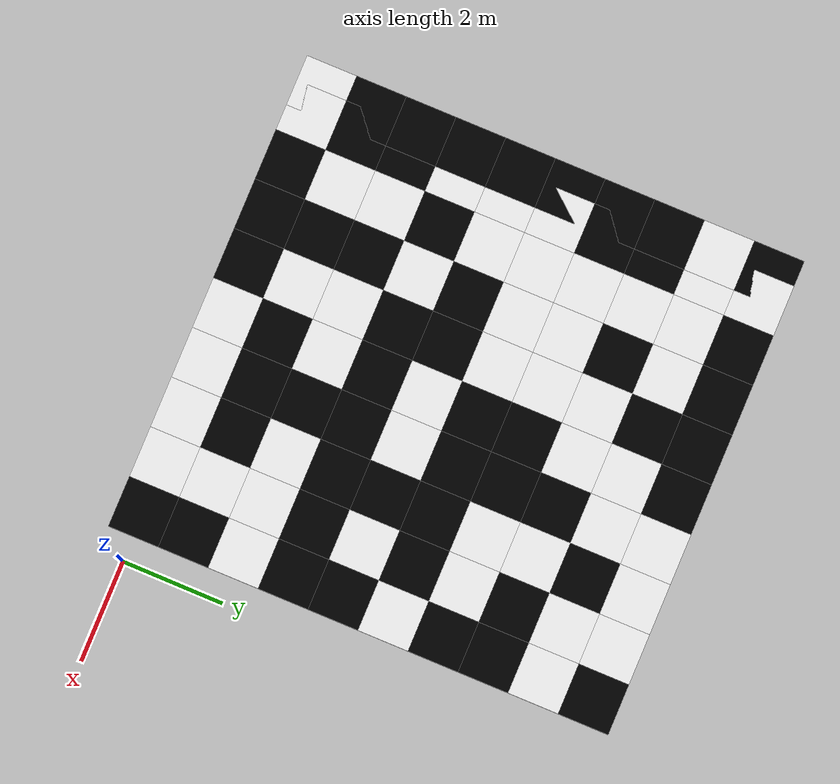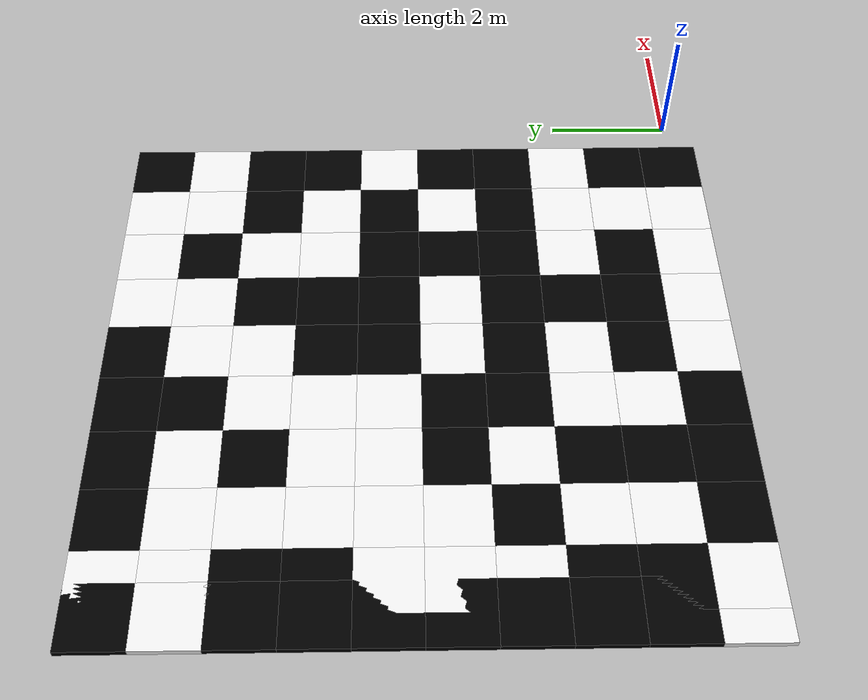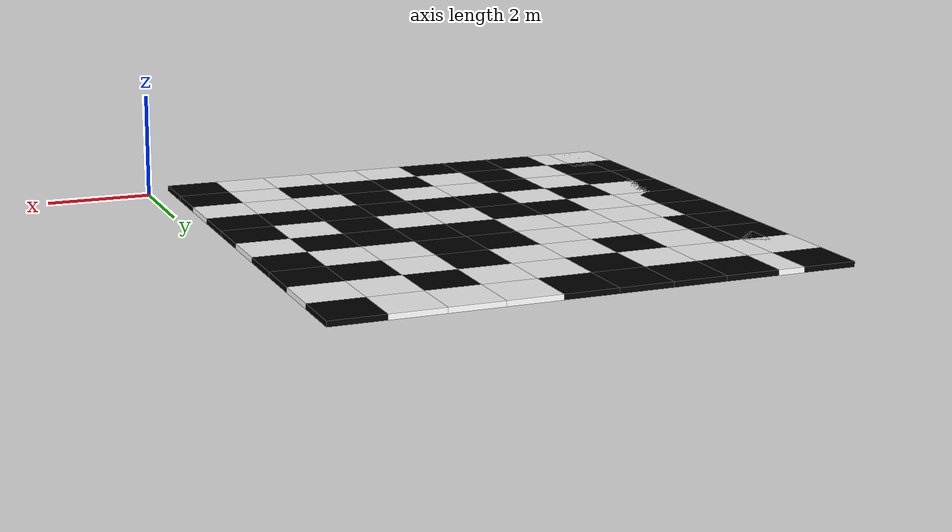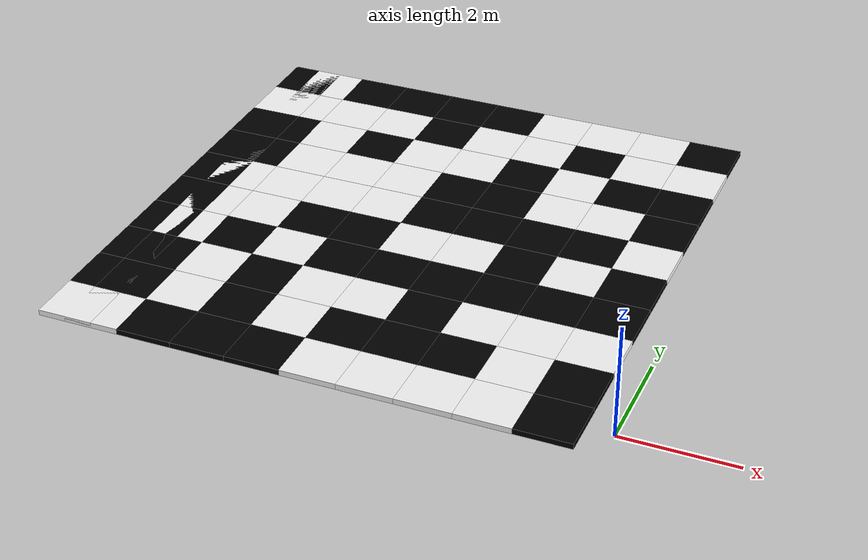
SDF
<sdf version="1.8">
 <world name="collective_perception_task_world">
  <model name="tile_-10_0">
   <is_static>true</is_static>
   <pose>-9.5 0 0 0 0 0</pose>
   <link name="link">
    <collision name="collision"><geometry><box><size>1 1 0.1</size></box></geometry></collision>
    <visual name="visual">
     <geometry><box><size>1 1 0.1</size></box></geometry>
     <material><ambient>1 1 1 1</ambient><diffuse>1 1 1 1</diffuse></material>
    </visual>
   </link>
  </model>
  <model name="tile_-10_1">
   <is_static>true</is_static>
   <pose>-9.5 1 0 0 0 0</pose>
   <link name="link">
    <collision name="collision"><geometry><box><size>1 1 0.1</size></box></geometry></collision>
    <visual name="visual">
     <geometry><box><size>1 1 0.1</size></box></geometry>
     <material><ambient>0 0 0 1</ambient><diffuse>0 0 0 1</diffuse></material>
    </visual>
   </link>
  </model>
  <model name="tile_-10_2">
   <is_static>true</is_static>
   <pose>-9.5 2 0 0 0 0</pose>
   <link name="link">
    <collision name="collision"><geometry><box><size>1 1 0.1</size></box></geometry></collision>
    <visual name="visual">
     <geometry><box><size>1 1 0.1</size></box></geometry>
     <material><ambient>0 0 0 1</ambient><diffuse>0 0 0 1</diffuse></material>
    </visual>
   </link>
  </model>
  <model name="tile_-10_3">
   <is_static>true</is_static>
   <pose>-9.5 3 0 0 0 0</pose>
   <link name="link">
    <collision name="collision"><geometry><box><size>1 1 0.1</size></box></geometry></collision>
    <visual name="visual">
     <geometry><box><size>1 1 0.1</size></box></geometry>
     <material><ambient>0 0 0 1</ambient><diffuse>0 0 0 1</diffuse></material>
    </visual>
   </link>
  </model>
  <model name="tile_-10_4">
   <is_static>true</is_static>
   <pose>-9.5 4 0 0 0 0</pose>
   <link name="link">
    <collision name="collision"><geometry><box><size>1 1 0.1</size></box></geometry></collision>
    <visual name="visual">
     <geometry><box><size>1 1 0.1</size></box></geometry>
     <material><ambient>0 0 0 1</ambient><diffuse>0 0 0 1</diffuse></material>
    </visual>
   </link>
  </model>
  <model name="tile_-10_5">
   <is_static>true</is_static>
   <pose>-9.5 5 0 0 0 0</pose>
   <link name="link">
    <collision name="collision"><geometry><box><size>1 1 0.1</size></box></geometry></collision>
    <visual name="visual">
     <geometry><box><size>1 1 0.1</size></box></geometry>
     <material><ambient>0 0 0 1</ambient><diffuse>0 0 0 1</diffuse></material>
    </visual>
   </link>
  </model>
  <model name="tile_-10_6">
   <is_static>true</is_static>
   <pose>-9.5 6 0 0 0 0</pose>
   <link name="link">
    <collision name="collision"><geometry><box><size>1 1 0.1</size></box></geometry></collision>
    <visual name="visual">
     <geometry><box><size>1 1 0.1</size></box></geometry>
     <material><ambient>0 0 0 1</ambient><diffuse>0 0 0 1</diffuse></material>
    </visual>
   </link>
  </model>
  <model name="tile_-10_7">
   <is_static>true</is_static>
   <pose>-9.5 7 0 0 0 0</pose>
   <link name="link">
    <collision name="collision"><geometry><box><size>1 1 0.1</size></box></geometry></collision>
    <visual name="visual">
     <geometry><box><size>1 1 0.1</size></box></geometry>
     <material><ambient>0 0 0 1</ambient><diffuse>0 0 0 1</diffuse></material>
    </visual>
   </link>
  </model>
  <model name="tile_-10_8">
   <is_static>true</is_static>
   <pose>-9.5 8 0 0 0 0</pose>
   <link name="link">
    <collision name="collision"><geometry><box><size>1 1 0.1</size></box></geometry></collision>
    <visual name="visual">
     <geometry><box><size>1 1 0.1</size></box></geometry>
     <material><ambient>1 1 1 1</ambient><diffuse>1 1 1 1</diffuse></material>
    </visual>
   </link>
  </model>
  <model name="tile_-10_9">
   <is_static>true</is_static>
   <pose>-9.5 9 0 0 0 0</pose>
   <link name="link">
    <collision name="collision"><geometry><box><size>1 1 0.1</size></box></geometry></collision>
    <visual name="visual">
     <geometry><box><size>1 1 0.1</size></box></geometry>
     <material><ambient>0 0 0 1</ambient><diffuse>0 0 0 1</diffuse></material>
    </visual>
   </link>
  </model>
  <model name="tile_-9_0">
   <is_static>true</is_static>
   <pose>-9 0 0 0 0 0</pose>
   <link name="link">
    <collision name="collision"><geometry><box><size>1 1 0.1</size></box></geometry></collision>
    <visual name="visual">
     <geometry><box><size>1 1 0.1</size></box></geometry>
     <material><ambient>1 1 1 1</ambient><diffuse>1 1 1 1</diffuse></material>
    </visual>
   </link>
  </model>
  <model name="tile_-9_1">
   <is_static>true</is_static>
   <pose>-9 1 0 0 0 0</pose>
   <link name="link">
    <collision name="collision"><geometry><box><size>1 1 0.1</size></box></geometry></collision>
    <visual name="visual">
     <geometry><box><size>1 1 0.1</size></box></geometry>
     <material><ambient>0 0 0 1</ambient><diffuse>0 0 0 1</diffuse></material>
    </visual>
   </link>
  </model>
  <model name="tile_-9_2">
   <is_static>true</is_static>
   <pose>-9 2 0 0 0 0</pose>
   <link name="link">
    <collision name="collision"><geometry><box><size>1 1 0.1</size></box></geometry></collision>
    <visual name="visual">
     <geometry><box><size>1 1 0.1</size></box></geometry>
     <material><ambient>0 0 0 1</ambient><diffuse>0 0 0 1</diffuse></material>
    </visual>
   </link>
  </model>
  <model name="tile_-9_3">
   <is_static>true</is_static>
   <pose>-9 3 0 0 0 0</pose>
   <link name="link">
    <collision name="collision"><geometry><box><size>1 1 0.1</size></box></geometry></collision>
    <visual name="visual">
     <geometry><box><size>1 1 0.1</size></box></geometry>
     <material><ambient>1 1 1 1</ambient><diffuse>1 1 1 1</diffuse></material>
    </visual>
   </link>
  </model>
  <model name="tile_-9_4">
   <is_static>true</is_static>
   <pose>-9 4 0 0 0 0</pose>
   <link name="link">
    <collision name="collision"><geometry><box><size>1 1 0.1</size></box></geometry></collision>
    <visual name="visual">
     <geometry><box><size>1 1 0.1</size></box></geometry>
     <material><ambient>1 1 1 1</ambient><diffuse>1 1 1 1</diffuse></material>
    </visual>
   </link>
  </model>
  <model name="tile_-9_5">
   <is_static>true</is_static>
   <pose>-9 5 0 0 0 0</pose>
   <link name="link">
    <collision name="collision"><geometry><box><size>1 1 0.1</size></box></geometry></collision>
    <visual name="visual">
     <geometry><box><size>1 1 0.1</size></box></geometry>
     <material><ambient>1 1 1 1</ambient><diffuse>1 1 1 1</diffuse></material>
    </visual>
   </link>
  </model>
  <model name="tile_-9_6">
   <is_static>true</is_static>
   <pose>-9 6 0 0 0 0</pose>
   <link name="link">
    <collision name="collision"><geometry><box><size>1 1 0.1</size></box></geometry></collision>
    <visual name="visual">
     <geometry><box><size>1 1 0.1</size></box></geometry>
     <material><ambient>0 0 0 1</ambient><diffuse>0 0 0 1</diffuse></material>
    </visual>
   </link>
  </model>
  <model name="tile_-9_7">
   <is_static>true</is_static>
   <pose>-9 7 0 0 0 0</pose>
   <link name="link">
    <collision name="collision"><geometry><box><size>1 1 0.1</size></box></geometry></collision>
    <visual name="visual">
     <geometry><box><size>1 1 0.1</size></box></geometry>
     <material><ambient>0 0 0 1</ambient><diffuse>0 0 0 1</diffuse></material>
    </visual>
   </link>
  </model>
  <model name="tile_-9_8">
   <is_static>true</is_static>
   <pose>-9 8 0 0 0 0</pose>
   <link name="link">
    <collision name="collision"><geometry><box><size>1 1 0.1</size></box></geometry></collision>
    <visual name="visual">
     <geometry><box><size>1 1 0.1</size></box></geometry>
     <material><ambient>1 1 1 1</ambient><diffuse>1 1 1 1</diffuse></material>
    </visual>
   </link>
  </model>
  <model name="tile_-9_9">
   <is_static>true</is_static>
   <pose>-9 9 0 0 0 0</pose>
   <link name="link">
    <collision name="collision"><geometry><box><size>1 1 0.1</size></box></geometry></collision>
    <visual name="visual">
     <geometry><box><size>1 1 0.1</size></box></geometry>
     <material><ambient>1 1 1 1</ambient><diffuse>1 1 1 1</diffuse></material>
    </visual>
   </link>
  </model>
  <model name="tile_-8_0">
   <is_static>true</is_static>
   <pose>-8 0 0 0 0 0</pose>
   <link name="link">
    <collision name="collision"><geometry><box><size>1 1 0.1</size></box></geometry></collision>
    <visual name="visual">
     <geometry><box><size>1 1 0.1</size></box></geometry>
     <material><ambient>0 0 0 1</ambient><diffuse>0 0 0 1</diffuse></material>
    </visual>
   </link>
  </model>
  <model name="tile_-8_1">
   <is_static>true</is_static>
   <pose>-8 1 0 0 0 0</pose>
   <link name="link">
    <collision name="collision"><geometry><box><size>1 1 0.1</size></box></geometry></collision>
    <visual name="visual">
     <geometry><box><size>1 1 0.1</size></box></geometry>
     <material><ambient>1 1 1 1</ambient><diffuse>1 1 1 1</diffuse></material>
    </visual>
   </link>
  </model>
  <model name="tile_-8_2">
   <is_static>true</is_static>
   <pose>-8 2 0 0 0 0</pose>
   <link name="link">
    <collision name="collision"><geometry><box><size>1 1 0.1</size></box></geometry></collision>
    <visual name="visual">
     <geometry><box><size>1 1 0.1</size></box></geometry>
     <material><ambient>1 1 1 1</ambient><diffuse>1 1 1 1</diffuse></material>
    </visual>
   </link>
  </model>
  <model name="tile_-8_3">
   <is_static>true</is_static>
   <pose>-8 3 0 0 0 0</pose>
   <link name="link">
    <collision name="collision"><geometry><box><size>1 1 0.1</size></box></geometry></collision>
    <visual name="visual">
     <geometry><box><size>1 1 0.1</size></box></geometry>
     <material><ambient>0 0 0 1</ambient><diffuse>0 0 0 1</diffuse></material>
    </visual>
   </link>
  </model>
  <model name="tile_-8_4">
   <is_static>true</is_static>
   <pose>-8 4 0 0 0 0</pose>
   <link name="link">
    <collision name="collision"><geometry><box><size>1 1 0.1</size></box></geometry></collision>
    <visual name="visual">
     <geometry><box><size>1 1 0.1</size></box></geometry>
     <material><ambient>1 1 1 1</ambient><diffuse>1 1 1 1</diffuse></material>
    </visual>
   </link>
  </model>
  <model name="tile_-8_5">
   <is_static>true</is_static>
   <pose>-8 5 0 0 0 0</pose>
   <link name="link">
    <collision name="collision"><geometry><box><size>1 1 0.1</size></box></geometry></collision>
    <visual name="visual">
     <geometry><box><size>1 1 0.1</size></box></geometry>
     <material><ambient>1 1 1 1</ambient><diffuse>1 1 1 1</diffuse></material>
    </visual>
   </link>
  </model>
  <model name="tile_-8_6">
   <is_static>true</is_static>
   <pose>-8 6 0 0 0 0</pose>
   <link name="link">
    <collision name="collision"><geometry><box><size>1 1 0.1</size></box></geometry></collision>
    <visual name="visual">
     <geometry><box><size>1 1 0.1</size></box></geometry>
     <material><ambient>1 1 1 1</ambient><diffuse>1 1 1 1</diffuse></material>
    </visual>
   </link>
  </model>
  <model name="tile_-8_7">
   <is_static>true</is_static>
   <pose>-8 7 0 0 0 0</pose>
   <link name="link">
    <collision name="collision"><geometry><box><size>1 1 0.1</size></box></geometry></collision>
    <visual name="visual">
     <geometry><box><size>1 1 0.1</size></box></geometry>
     <material><ambient>1 1 1 1</ambient><diffuse>1 1 1 1</diffuse></material>
    </visual>
   </link>
  </model>
  <model name="tile_-8_8">
   <is_static>true</is_static>
   <pose>-8 8 0 0 0 0</pose>
   <link name="link">
    <collision name="collision"><geometry><box><size>1 1 0.1</size></box></geometry></collision>
    <visual name="visual">
     <geometry><box><size>1 1 0.1</size></box></geometry>
     <material><ambient>1 1 1 1</ambient><diffuse>1 1 1 1</diffuse></material>
    </visual>
   </link>
  </model>
  <model name="tile_-8_9">
   <is_static>true</is_static>
   <pose>-8 9 0 0 0 0</pose>
   <link name="link">
    <collision name="collision"><geometry><box><size>1 1 0.1</size></box></geometry></collision>
    <visual name="visual">
     <geometry><box><size>1 1 0.1</size></box></geometry>
     <material><ambient>0 0 0 1</ambient><diffuse>0 0 0 1</diffuse></material>
    </visual>
   </link>
  </model>
  <model name="tile_-7_0">
   <is_static>true</is_static>
   <pose>-7 0 0 0 0 0</pose>
   <link name="link">
    <collision name="collision"><geometry><box><size>1 1 0.1</size></box></geometry></collision>
    <visual name="visual">
     <geometry><box><size>1 1 0.1</size></box></geometry>
     <material><ambient>0 0 0 1</ambient><diffuse>0 0 0 1</diffuse></material>
    </visual>
   </link>
  </model>
  <model name="tile_-7_1">
   <is_static>true</is_static>
   <pose>-7 1 0 0 0 0</pose>
   <link name="link">
    <collision name="collision"><geometry><box><size>1 1 0.1</size></box></geometry></collision>
    <visual name="visual">
     <geometry><box><size>1 1 0.1</size></box></geometry>
     <material><ambient>0 0 0 1</ambient><diffuse>0 0 0 1</diffuse></material>
    </visual>
   </link>
  </model>
  <model name="tile_-7_2">
   <is_static>true</is_static>
   <pose>-7 2 0 0 0 0</pose>
   <link name="link">
    <collision name="collision"><geometry><box><size>1 1 0.1</size></box></geometry></collision>
    <visual name="visual">
     <geometry><box><size>1 1 0.1</size></box></geometry>
     <material><ambient>0 0 0 1</ambient><diffuse>0 0 0 1</diffuse></material>
    </visual>
   </link>
  </model>
  <model name="tile_-7_3">
   <is_static>true</is_static>
   <pose>-7 3 0 0 0 0</pose>
   <link name="link">
    <collision name="collision"><geometry><box><size>1 1 0.1</size></box></geometry></collision>
    <visual name="visual">
     <geometry><box><size>1 1 0.1</size></box></geometry>
     <material><ambient>1 1 1 1</ambient><diffuse>1 1 1 1</diffuse></material>
    </visual>
   </link>
  </model>
  <model name="tile_-7_4">
   <is_static>true</is_static>
   <pose>-7 4 0 0 0 0</pose>
   <link name="link">
    <collision name="collision"><geometry><box><size>1 1 0.1</size></box></geometry></collision>
    <visual name="visual">
     <geometry><box><size>1 1 0.1</size></box></geometry>
     <material><ambient>0 0 0 1</ambient><diffuse>0 0 0 1</diffuse></material>
    </visual>
   </link>
  </model>
  <model name="tile_-7_5">
   <is_static>true</is_static>
   <pose>-7 5 0 0 0 0</pose>
   <link name="link">
    <collision name="collision"><geometry><box><size>1 1 0.1</size></box></geometry></collision>
    <visual name="visual">
     <geometry><box><size>1 1 0.1</size></box></geometry>
     <material><ambient>1 1 1 1</ambient><diffuse>1 1 1 1</diffuse></material>
    </visual>
   </link>
  </model>
  <model name="tile_-7_6">
   <is_static>true</is_static>
   <pose>-7 6 0 0 0 0</pose>
   <link name="link">
    <collision name="collision"><geometry><box><size>1 1 0.1</size></box></geometry></collision>
    <visual name="visual">
     <geometry><box><size>1 1 0.1</size></box></geometry>
     <material><ambient>1 1 1 1</ambient><diffuse>1 1 1 1</diffuse></material>
    </visual>
   </link>
  </model>
  <model name="tile_-7_7">
   <is_static>true</is_static>
   <pose>-7 7 0 0 0 0</pose>
   <link name="link">
    <collision name="collision"><geometry><box><size>1 1 0.1</size></box></geometry></collision>
    <visual name="visual">
     <geometry><box><size>1 1 0.1</size></box></geometry>
     <material><ambient>0 0 0 1</ambient><diffuse>0 0 0 1</diffuse></material>
    </visual>
   </link>
  </model>
  <model name="tile_-7_8">
   <is_static>true</is_static>
   <pose>-7 8 0 0 0 0</pose>
   <link name="link">
    <collision name="collision"><geometry><box><size>1 1 0.1</size></box></geometry></collision>
    <visual name="visual">
     <geometry><box><size>1 1 0.1</size></box></geometry>
     <material><ambient>1 1 1 1</ambient><diffuse>1 1 1 1</diffuse></material>
    </visual>
   </link>
  </model>
  <model name="tile_-7_9">
   <is_static>true</is_static>
   <pose>-7 9 0 0 0 0</pose>
   <link name="link">
    <collision name="collision"><geometry><box><size>1 1 0.1</size></box></geometry></collision>
    <visual name="visual">
     <geometry><box><size>1 1 0.1</size></box></geometry>
     <material><ambient>0 0 0 1</ambient><diffuse>0 0 0 1</diffuse></material>
    </visual>
   </link>
  </model>
  <model name="tile_-6_0">
   <is_static>true</is_static>
   <pose>-6 0 0 0 0 0</pose>
   <link name="link">
    <collision name="collision"><geometry><box><size>1 1 0.1</size></box></geometry></collision>
    <visual name="visual">
     <geometry><box><size>1 1 0.1</size></box></geometry>
     <material><ambient>0 0 0 1</ambient><diffuse>0 0 0 1</diffuse></material>
    </visual>
   </link>
  </model>
  <model name="tile_-6_1">
   <is_static>true</is_static>
   <pose>-6 1 0 0 0 0</pose>
   <link name="link">
    <collision name="collision"><geometry><box><size>1 1 0.1</size></box></geometry></collision>
    <visual name="visual">
     <geometry><box><size>1 1 0.1</size></box></geometry>
     <material><ambient>1 1 1 1</ambient><diffuse>1 1 1 1</diffuse></material>
    </visual>
   </link>
  </model>
  <model name="tile_-6_2">
   <is_static>true</is_static>
   <pose>-6 2 0 0 0 0</pose>
   <link name="link">
    <collision name="collision"><geometry><box><size>1 1 0.1</size></box></geometry></collision>
    <visual name="visual">
     <geometry><box><size>1 1 0.1</size></box></geometry>
     <material><ambient>1 1 1 1</ambient><diffuse>1 1 1 1</diffuse></material>
    </visual>
   </link>
  </model>
  <model name="tile_-6_3">
   <is_static>true</is_static>
   <pose>-6 3 0 0 0 0</pose>
   <link name="link">
    <collision name="collision"><geometry><box><size>1 1 0.1</size></box></geometry></collision>
    <visual name="visual">
     <geometry><box><size>1 1 0.1</size></box></geometry>
     <material><ambient>0 0 0 1</ambient><diffuse>0 0 0 1</diffuse></material>
    </visual>
   </link>
  </model>
  <model name="tile_-6_4">
   <is_static>true</is_static>
   <pose>-6 4 0 0 0 0</pose>
   <link name="link">
    <collision name="collision"><geometry><box><size>1 1 0.1</size></box></geometry></collision>
    <visual name="visual">
     <geometry><box><size>1 1 0.1</size></box></geometry>
     <material><ambient>0 0 0 1</ambient><diffuse>0 0 0 1</diffuse></material>
    </visual>
   </link>
  </model>
  <model name="tile_-6_5">
   <is_static>true</is_static>
   <pose>-6 5 0 0 0 0</pose>
   <link name="link">
    <collision name="collision"><geometry><box><size>1 1 0.1</size></box></geometry></collision>
    <visual name="visual">
     <geometry><box><size>1 1 0.1</size></box></geometry>
     <material><ambient>1 1 1 1</ambient><diffuse>1 1 1 1</diffuse></material>
    </visual>
   </link>
  </model>
  <model name="tile_-6_6">
   <is_static>true</is_static>
   <pose>-6 6 0 0 0 0</pose>
   <link name="link">
    <collision name="collision"><geometry><box><size>1 1 0.1</size></box></geometry></collision>
    <visual name="visual">
     <geometry><box><size>1 1 0.1</size></box></geometry>
     <material><ambient>1 1 1 1</ambient><diffuse>1 1 1 1</diffuse></material>
    </visual>
   </link>
  </model>
  <model name="tile_-6_7">
   <is_static>true</is_static>
   <pose>-6 7 0 0 0 0</pose>
   <link name="link">
    <collision name="collision"><geometry><box><size>1 1 0.1</size></box></geometry></collision>
    <visual name="visual">
     <geometry><box><size>1 1 0.1</size></box></geometry>
     <material><ambient>1 1 1 1</ambient><diffuse>1 1 1 1</diffuse></material>
    </visual>
   </link>
  </model>
  <model name="tile_-6_8">
   <is_static>true</is_static>
   <pose>-6 8 0 0 0 0</pose>
   <link name="link">
    <collision name="collision"><geometry><box><size>1 1 0.1</size></box></geometry></collision>
    <visual name="visual">
     <geometry><box><size>1 1 0.1</size></box></geometry>
     <material><ambient>0 0 0 1</ambient><diffuse>0 0 0 1</diffuse></material>
    </visual>
   </link>
  </model>
  <model name="tile_-6_9">
   <is_static>true</is_static>
   <pose>-6 9 0 0 0 0</pose>
   <link name="link">
    <collision name="collision"><geometry><box><size>1 1 0.1</size></box></geometry></collision>
    <visual name="visual">
     <geometry><box><size>1 1 0.1</size></box></geometry>
     <material><ambient>0 0 0 1</ambient><diffuse>0 0 0 1</diffuse></material>
    </visual>
   </link>
  </model>
  <model name="tile_-5_0">
   <is_static>true</is_static>
   <pose>-5 0 0 0 0 0</pose>
   <link name="link">
    <collision name="collision"><geometry><box><size>1 1 0.1</size></box></geometry></collision>
    <visual name="visual">
     <geometry><box><size>1 1 0.1</size></box></geometry>
     <material><ambient>1 1 1 1</ambient><diffuse>1 1 1 1</diffuse></material>
    </visual>
   </link>
  </model>
  <model name="tile_-5_1">
   <is_static>true</is_static>
   <pose>-5 1 0 0 0 0</pose>
   <link name="link">
    <collision name="collision"><geometry><box><size>1 1 0.1</size></box></geometry></collision>
    <visual name="visual">
     <geometry><box><size>1 1 0.1</size></box></geometry>
     <material><ambient>0 0 0 1</ambient><diffuse>0 0 0 1</diffuse></material>
    </visual>
   </link>
  </model>
  <model name="tile_-5_2">
   <is_static>true</is_static>
   <pose>-5 2 0 0 0 0</pose>
   <link name="link">
    <collision name="collision"><geometry><box><size>1 1 0.1</size></box></geometry></collision>
    <visual name="visual">
     <geometry><box><size>1 1 0.1</size></box></geometry>
     <material><ambient>1 1 1 1</ambient><diffuse>1 1 1 1</diffuse></material>
    </visual>
   </link>
  </model>
  <model name="tile_-5_3">
   <is_static>true</is_static>
   <pose>-5 3 0 0 0 0</pose>
   <link name="link">
    <collision name="collision"><geometry><box><size>1 1 0.1</size></box></geometry></collision>
    <visual name="visual">
     <geometry><box><size>1 1 0.1</size></box></geometry>
     <material><ambient>0 0 0 1</ambient><diffuse>0 0 0 1</diffuse></material>
    </visual>
   </link>
  </model>
  <model name="tile_-5_4">
   <is_static>true</is_static>
   <pose>-5 4 0 0 0 0</pose>
   <link name="link">
    <collision name="collision"><geometry><box><size>1 1 0.1</size></box></geometry></collision>
    <visual name="visual">
     <geometry><box><size>1 1 0.1</size></box></geometry>
     <material><ambient>1 1 1 1</ambient><diffuse>1 1 1 1</diffuse></material>
    </visual>
   </link>
  </model>
  <model name="tile_-5_5">
   <is_static>true</is_static>
   <pose>-5 5 0 0 0 0</pose>
   <link name="link">
    <collision name="collision"><geometry><box><size>1 1 0.1</size></box></geometry></collision>
    <visual name="visual">
     <geometry><box><size>1 1 0.1</size></box></geometry>
     <material><ambient>0 0 0 1</ambient><diffuse>0 0 0 1</diffuse></material>
    </visual>
   </link>
  </model>
  <model name="tile_-5_6">
   <is_static>true</is_static>
   <pose>-5 6 0 0 0 0</pose>
   <link name="link">
    <collision name="collision"><geometry><box><size>1 1 0.1</size></box></geometry></collision>
    <visual name="visual">
     <geometry><box><size>1 1 0.1</size></box></geometry>
     <material><ambient>0 0 0 1</ambient><diffuse>0 0 0 1</diffuse></material>
    </visual>
   </link>
  </model>
  <model name="tile_-5_7">
   <is_static>true</is_static>
   <pose>-5 7 0 0 0 0</pose>
   <link name="link">
    <collision name="collision"><geometry><box><size>1 1 0.1</size></box></geometry></collision>
    <visual name="visual">
     <geometry><box><size>1 1 0.1</size></box></geometry>
     <material><ambient>1 1 1 1</ambient><diffuse>1 1 1 1</diffuse></material>
    </visual>
   </link>
  </model>
  <model name="tile_-5_8">
   <is_static>true</is_static>
   <pose>-5 8 0 0 0 0</pose>
   <link name="link">
    <collision name="collision"><geometry><box><size>1 1 0.1</size></box></geometry></collision>
    <visual name="visual">
     <geometry><box><size>1 1 0.1</size></box></geometry>
     <material><ambient>1 1 1 1</ambient><diffuse>1 1 1 1</diffuse></material>
    </visual>
   </link>
  </model>
  <model name="tile_-5_9">
   <is_static>true</is_static>
   <pose>-5 9 0 0 0 0</pose>
   <link name="link">
    <collision name="collision"><geometry><box><size>1 1 0.1</size></box></geometry></collision>
    <visual name="visual">
     <geometry><box><size>1 1 0.1</size></box></geometry>
     <material><ambient>0 0 0 1</ambient><diffuse>0 0 0 1</diffuse></material>
    </visual>
   </link>
  </model>
  <model name="tile_-4_0">
   <is_static>true</is_static>
   <pose>-4 0 0 0 0 0</pose>
   <link name="link">
    <collision name="collision"><geometry><box><size>1 1 0.1</size></box></geometry></collision>
    <visual name="visual">
     <geometry><box><size>1 1 0.1</size></box></geometry>
     <material><ambient>1 1 1 1</ambient><diffuse>1 1 1 1</diffuse></material>
    </visual>
   </link>
  </model>
  <model name="tile_-4_1">
   <is_static>true</is_static>
   <pose>-4 1 0 0 0 0</pose>
   <link name="link">
    <collision name="collision"><geometry><box><size>1 1 0.1</size></box></geometry></collision>
    <visual name="visual">
     <geometry><box><size>1 1 0.1</size></box></geometry>
     <material><ambient>0 0 0 1</ambient><diffuse>0 0 0 1</diffuse></material>
    </visual>
   </link>
  </model>
  <model name="tile_-4_2">
   <is_static>true</is_static>
   <pose>-4 2 0 0 0 0</pose>
   <link name="link">
    <collision name="collision"><geometry><box><size>1 1 0.1</size></box></geometry></collision>
    <visual name="visual">
     <geometry><box><size>1 1 0.1</size></box></geometry>
     <material><ambient>0 0 0 1</ambient><diffuse>0 0 0 1</diffuse></material>
    </visual>
   </link>
  </model>
  <model name="tile_-4_3">
   <is_static>true</is_static>
   <pose>-4 3 0 0 0 0</pose>
   <link name="link">
    <collision name="collision"><geometry><box><size>1 1 0.1</size></box></geometry></collision>
    <visual name="visual">
     <geometry><box><size>1 1 0.1</size></box></geometry>
     <material><ambient>0 0 0 1</ambient><diffuse>0 0 0 1</diffuse></material>
    </visual>
   </link>
  </model>
  <model name="tile_-4_4">
   <is_static>true</is_static>
   <pose>-4 4 0 0 0 0</pose>
   <link name="link">
    <collision name="collision"><geometry><box><size>1 1 0.1</size></box></geometry></collision>
    <visual name="visual">
     <geometry><box><size>1 1 0.1</size></box></geometry>
     <material><ambient>1 1 1 1</ambient><diffuse>1 1 1 1</diffuse></material>
    </visual>
   </link>
  </model>
  <model name="tile_-4_5">
   <is_static>true</is_static>
   <pose>-4 5 0 0 0 0</pose>
   <link name="link">
    <collision name="collision"><geometry><box><size>1 1 0.1</size></box></geometry></collision>
    <visual name="visual">
     <geometry><box><size>1 1 0.1</size></box></geometry>
     <material><ambient>0 0 0 1</ambient><diffuse>0 0 0 1</diffuse></material>
    </visual>
   </link>
  </model>
  <model name="tile_-4_6">
   <is_static>true</is_static>
   <pose>-4 6 0 0 0 0</pose>
   <link name="link">
    <collision name="collision"><geometry><box><size>1 1 0.1</size></box></geometry></collision>
    <visual name="visual">
     <geometry><box><size>1 1 0.1</size></box></geometry>
     <material><ambient>0 0 0 1</ambient><diffuse>0 0 0 1</diffuse></material>
    </visual>
   </link>
  </model>
  <model name="tile_-4_7">
   <is_static>true</is_static>
   <pose>-4 7 0 0 0 0</pose>
   <link name="link">
    <collision name="collision"><geometry><box><size>1 1 0.1</size></box></geometry></collision>
    <visual name="visual">
     <geometry><box><size>1 1 0.1</size></box></geometry>
     <material><ambient>0 0 0 1</ambient><diffuse>0 0 0 1</diffuse></material>
    </visual>
   </link>
  </model>
  <model name="tile_-4_8">
   <is_static>true</is_static>
   <pose>-4 8 0 0 0 0</pose>
   <link name="link">
    <collision name="collision"><geometry><box><size>1 1 0.1</size></box></geometry></collision>
    <visual name="visual">
     <geometry><box><size>1 1 0.1</size></box></geometry>
     <material><ambient>1 1 1 1</ambient><diffuse>1 1 1 1</diffuse></material>
    </visual>
   </link>
  </model>
  <model name="tile_-4_9">
   <is_static>true</is_static>
   <pose>-4 9 0 0 0 0</pose>
   <link name="link">
    <collision name="collision"><geometry><box><size>1 1 0.1</size></box></geometry></collision>
    <visual name="visual">
     <geometry><box><size>1 1 0.1</size></box></geometry>
     <material><ambient>1 1 1 1</ambient><diffuse>1 1 1 1</diffuse></material>
    </visual>
   </link>
  </model>
  <model name="tile_-3_0">
   <is_static>true</is_static>
   <pose>-3 0 0 0 0 0</pose>
   <link name="link">
    <collision name="collision"><geometry><box><size>1 1 0.1</size></box></geometry></collision>
    <visual name="visual">
     <geometry><box><size>1 1 0.1</size></box></geometry>
     <material><ambient>1 1 1 1</ambient><diffuse>1 1 1 1</diffuse></material>
    </visual>
   </link>
  </model>
  <model name="tile_-3_1">
   <is_static>true</is_static>
   <pose>-3 1 0 0 0 0</pose>
   <link name="link">
    <collision name="collision"><geometry><box><size>1 1 0.1</size></box></geometry></collision>
    <visual name="visual">
     <geometry><box><size>1 1 0.1</size></box></geometry>
     <material><ambient>0 0 0 1</ambient><diffuse>0 0 0 1</diffuse></material>
    </visual>
   </link>
  </model>
  <model name="tile_-3_2">
   <is_static>true</is_static>
   <pose>-3 2 0 0 0 0</pose>
   <link name="link">
    <collision name="collision"><geometry><box><size>1 1 0.1</size></box></geometry></collision>
    <visual name="visual">
     <geometry><box><size>1 1 0.1</size></box></geometry>
     <material><ambient>1 1 1 1</ambient><diffuse>1 1 1 1</diffuse></material>
    </visual>
   </link>
  </model>
  <model name="tile_-3_3">
   <is_static>true</is_static>
   <pose>-3 3 0 0 0 0</pose>
   <link name="link">
    <collision name="collision"><geometry><box><size>1 1 0.1</size></box></geometry></collision>
    <visual name="visual">
     <geometry><box><size>1 1 0.1</size></box></geometry>
     <material><ambient>0 0 0 1</ambient><diffuse>0 0 0 1</diffuse></material>
    </visual>
   </link>
  </model>
  <model name="tile_-3_4">
   <is_static>true</is_static>
   <pose>-3 4 0 0 0 0</pose>
   <link name="link">
    <collision name="collision"><geometry><box><size>1 1 0.1</size></box></geometry></collision>
    <visual name="visual">
     <geometry><box><size>1 1 0.1</size></box></geometry>
     <material><ambient>0 0 0 1</ambient><diffuse>0 0 0 1</diffuse></material>
    </visual>
   </link>
  </model>
  <model name="tile_-3_5">
   <is_static>true</is_static>
   <pose>-3 5 0 0 0 0</pose>
   <link name="link">
    <collision name="collision"><geometry><box><size>1 1 0.1</size></box></geometry></collision>
    <visual name="visual">
     <geometry><box><size>1 1 0.1</size></box></geometry>
     <material><ambient>0 0 0 1</ambient><diffuse>0 0 0 1</diffuse></material>
    </visual>
   </link>
  </model>
  <model name="tile_-3_6">
   <is_static>true</is_static>
   <pose>-3 6 0 0 0 0</pose>
   <link name="link">
    <collision name="collision"><geometry><box><size>1 1 0.1</size></box></geometry></collision>
    <visual name="visual">
     <geometry><box><size>1 1 0.1</size></box></geometry>
     <material><ambient>1 1 1 1</ambient><diffuse>1 1 1 1</diffuse></material>
    </visual>
   </link>
  </model>
  <model name="tile_-3_7">
   <is_static>true</is_static>
   <pose>-3 7 0 0 0 0</pose>
   <link name="link">
    <collision name="collision"><geometry><box><size>1 1 0.1</size></box></geometry></collision>
    <visual name="visual">
     <geometry><box><size>1 1 0.1</size></box></geometry>
     <material><ambient>1 1 1 1</ambient><diffuse>1 1 1 1</diffuse></material>
    </visual>
   </link>
  </model>
  <model name="tile_-3_8">
   <is_static>true</is_static>
   <pose>-3 8 0 0 0 0</pose>
   <link name="link">
    <collision name="collision"><geometry><box><size>1 1 0.1</size></box></geometry></collision>
    <visual name="visual">
     <geometry><box><size>1 1 0.1</size></box></geometry>
     <material><ambient>0 0 0 1</ambient><diffuse>0 0 0 1</diffuse></material>
    </visual>
   </link>
  </model>
  <model name="tile_-3_9">
   <is_static>true</is_static>
   <pose>-3 9 0 0 0 0</pose>
   <link name="link">
    <collision name="collision"><geometry><box><size>1 1 0.1</size></box></geometry></collision>
    <visual name="visual">
     <geometry><box><size>1 1 0.1</size></box></geometry>
     <material><ambient>1 1 1 1</ambient><diffuse>1 1 1 1</diffuse></material>
    </visual>
   </link>
  </model>
  <model name="tile_-2_0">
   <is_static>true</is_static>
   <pose>-2 0 0 0 0 0</pose>
   <link name="link">
    <collision name="collision"><geometry><box><size>1 1 0.1</size></box></geometry></collision>
    <visual name="visual">
     <geometry><box><size>1 1 0.1</size></box></geometry>
     <material><ambient>1 1 1 1</ambient><diffuse>1 1 1 1</diffuse></material>
    </visual>
   </link>
  </model>
  <model name="tile_-2_1">
   <is_static>true</is_static>
   <pose>-2 1 0 0 0 0</pose>
   <link name="link">
    <collision name="collision"><geometry><box><size>1 1 0.1</size></box></geometry></collision>
    <visual name="visual">
     <geometry><box><size>1 1 0.1</size></box></geometry>
     <material><ambient>1 1 1 1</ambient><diffuse>1 1 1 1</diffuse></material>
    </visual>
   </link>
  </model>
  <model name="tile_-2_2">
   <is_static>true</is_static>
   <pose>-2 2 0 0 0 0</pose>
   <link name="link">
    <collision name="collision"><geometry><box><size>1 1 0.1</size></box></geometry></collision>
    <visual name="visual">
     <geometry><box><size>1 1 0.1</size></box></geometry>
     <material><ambient>1 1 1 1</ambient><diffuse>1 1 1 1</diffuse></material>
    </visual>
   </link>
  </model>
  <model name="tile_-2_3">
   <is_static>true</is_static>
   <pose>-2 3 0 0 0 0</pose>
   <link name="link">
    <collision name="collision"><geometry><box><size>1 1 0.1</size></box></geometry></collision>
    <visual name="visual">
     <geometry><box><size>1 1 0.1</size></box></geometry>
     <material><ambient>0 0 0 1</ambient><diffuse>0 0 0 1</diffuse></material>
    </visual>
   </link>
  </model>
  <model name="tile_-2_4">
   <is_static>true</is_static>
   <pose>-2 4 0 0 0 0</pose>
   <link name="link">
    <collision name="collision"><geometry><box><size>1 1 0.1</size></box></geometry></collision>
    <visual name="visual">
     <geometry><box><size>1 1 0.1</size></box></geometry>
     <material><ambient>1 1 1 1</ambient><diffuse>1 1 1 1</diffuse></material>
    </visual>
   </link>
  </model>
  <model name="tile_-2_5">
   <is_static>true</is_static>
   <pose>-2 5 0 0 0 0</pose>
   <link name="link">
    <collision name="collision"><geometry><box><size>1 1 0.1</size></box></geometry></collision>
    <visual name="visual">
     <geometry><box><size>1 1 0.1</size></box></geometry>
     <material><ambient>0 0 0 1</ambient><diffuse>0 0 0 1</diffuse></material>
    </visual>
   </link>
  </model>
  <model name="tile_-2_6">
   <is_static>true</is_static>
   <pose>-2 6 0 0 0 0</pose>
   <link name="link">
    <collision name="collision"><geometry><box><size>1 1 0.1</size></box></geometry></collision>
    <visual name="visual">
     <geometry><box><size>1 1 0.1</size></box></geometry>
     <material><ambient>1 1 1 1</ambient><diffuse>1 1 1 1</diffuse></material>
    </visual>
   </link>
  </model>
  <model name="tile_-2_7">
   <is_static>true</is_static>
   <pose>-2 7 0 0 0 0</pose>
   <link name="link">
    <collision name="collision"><geometry><box><size>1 1 0.1</size></box></geometry></collision>
    <visual name="visual">
     <geometry><box><size>1 1 0.1</size></box></geometry>
     <material><ambient>0 0 0 1</ambient><diffuse>0 0 0 1</diffuse></material>
    </visual>
   </link>
  </model>
  <model name="tile_-2_8">
   <is_static>true</is_static>
   <pose>-2 8 0 0 0 0</pose>
   <link name="link">
    <collision name="collision"><geometry><box><size>1 1 0.1</size></box></geometry></collision>
    <visual name="visual">
     <geometry><box><size>1 1 0.1</size></box></geometry>
     <material><ambient>1 1 1 1</ambient><diffuse>1 1 1 1</diffuse></material>
    </visual>
   </link>
  </model>
  <model name="tile_-2_9">
   <is_static>true</is_static>
   <pose>-2 9 0 0 0 0</pose>
   <link name="link">
    <collision name="collision"><geometry><box><size>1 1 0.1</size></box></geometry></collision>
    <visual name="visual">
     <geometry><box><size>1 1 0.1</size></box></geometry>
     <material><ambient>1 1 1 1</ambient><diffuse>1 1 1 1</diffuse></material>
    </visual>
   </link>
  </model>
  <model name="tile_-1_0">
   <is_static>true</is_static>
   <pose>-1 0 0 0 0 0</pose>
   <link name="link">
    <collision name="collision"><geometry><box><size>1 1 0.1</size></box></geometry></collision>
    <visual name="visual">
     <geometry><box><size>1 1 0.1</size></box></geometry>
     <material><ambient>0 0 0 1</ambient><diffuse>0 0 0 1</diffuse></material>
    </visual>
   </link>
  </model>
  <model name="tile_-1_1">
   <is_static>true</is_static>
   <pose>-1 1 0 0 0 0</pose>
   <link name="link">
    <collision name="collision"><geometry><box><size>1 1 0.1</size></box></geometry></collision>
    <visual name="visual">
     <geometry><box><size>1 1 0.1</size></box></geometry>
     <material><ambient>0 0 0 1</ambient><diffuse>0 0 0 1</diffuse></material>
    </visual>
   </link>
  </model>
  <model name="tile_-1_2">
   <is_static>true</is_static>
   <pose>-1 2 0 0 0 0</pose>
   <link name="link">
    <collision name="collision"><geometry><box><size>1 1 0.1</size></box></geometry></collision>
    <visual name="visual">
     <geometry><box><size>1 1 0.1</size></box></geometry>
     <material><ambient>1 1 1 1</ambient><diffuse>1 1 1 1</diffuse></material>
    </visual>
   </link>
  </model>
  <model name="tile_-1_3">
   <is_static>true</is_static>
   <pose>-1 3 0 0 0 0</pose>
   <link name="link">
    <collision name="collision"><geometry><box><size>1 1 0.1</size></box></geometry></collision>
    <visual name="visual">
     <geometry><box><size>1 1 0.1</size></box></geometry>
     <material><ambient>0 0 0 1</ambient><diffuse>0 0 0 1</diffuse></material>
    </visual>
   </link>
  </model>
  <model name="tile_-1_4">
   <is_static>true</is_static>
   <pose>-1 4 0 0 0 0</pose>
   <link name="link">
    <collision name="collision"><geometry><box><size>1 1 0.1</size></box></geometry></collision>
    <visual name="visual">
     <geometry><box><size>1 1 0.1</size></box></geometry>
     <material><ambient>0 0 0 1</ambient><diffuse>0 0 0 1</diffuse></material>
    </visual>
   </link>
  </model>
  <model name="tile_-1_5">
   <is_static>true</is_static>
   <pose>-1 5 0 0 0 0</pose>
   <link name="link">
    <collision name="collision"><geometry><box><size>1 1 0.1</size></box></geometry></collision>
    <visual name="visual">
     <geometry><box><size>1 1 0.1</size></box></geometry>
     <material><ambient>1 1 1 1</ambient><diffuse>1 1 1 1</diffuse></material>
    </visual>
   </link>
  </model>
  <model name="tile_-1_6">
   <is_static>true</is_static>
   <pose>-1 6 0 0 0 0</pose>
   <link name="link">
    <collision name="collision"><geometry><box><size>1 1 0.1</size></box></geometry></collision>
    <visual name="visual">
     <geometry><box><size>1 1 0.1</size></box></geometry>
     <material><ambient>0 0 0 1</ambient><diffuse>0 0 0 1</diffuse></material>
    </visual>
   </link>
  </model>
  <model name="tile_-1_7">
   <is_static>true</is_static>
   <pose>-1 7 0 0 0 0</pose>
   <link name="link">
    <collision name="collision"><geometry><box><size>1 1 0.1</size></box></geometry></collision>
    <visual name="visual">
     <geometry><box><size>1 1 0.1</size></box></geometry>
     <material><ambient>0 0 0 1</ambient><diffuse>0 0 0 1</diffuse></material>
    </visual>
   </link>
  </model>
  <model name="tile_-1_8">
   <is_static>true</is_static>
   <pose>-1 8 0 0 0 0</pose>
   <link name="link">
    <collision name="collision"><geometry><box><size>1 1 0.1</size></box></geometry></collision>
    <visual name="visual">
     <geometry><box><size>1 1 0.1</size></box></geometry>
     <material><ambient>1 1 1 1</ambient><diffuse>1 1 1 1</diffuse></material>
    </visual>
   </link>
  </model>
  <model name="tile_-1_9">
   <is_static>true</is_static>
   <pose>-1 9 0 0 0 0</pose>
   <link name="link">
    <collision name="collision"><geometry><box><size>1 1 0.1</size></box></geometry></collision>
    <visual name="visual">
     <geometry><box><size>1 1 0.1</size></box></geometry>
     <material><ambient>0 0 0 1</ambient><diffuse>0 0 0 1</diffuse></material>
    </visual>
   </link>
  </model>
 </world>
</sdf>
